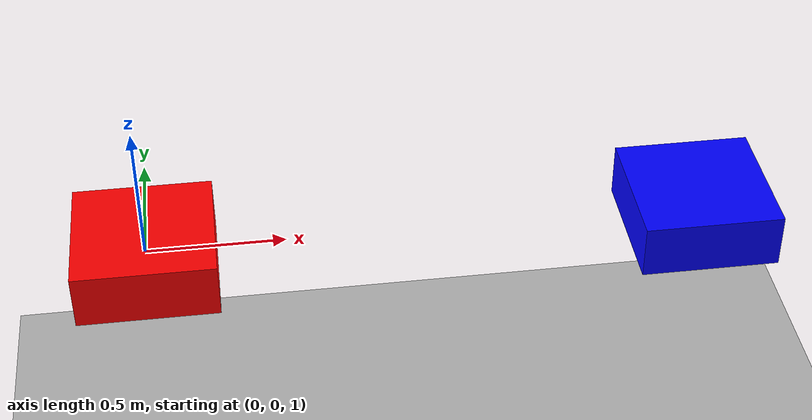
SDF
<?xml version="1.0" ?>
<sdf version="1.9">
  <world name="my_world">

    <!-- Directly Defined Ground Plane -->
    <model name="ground_plane">
      <static>true</static>
      <link name="link">
        <collision name="collision">
          <geometry>
            <plane>
              <normal>0 0 1</normal>
              <size>10 10</size>
            </plane>
          </geometry>
        </collision>
        <visual name="visual">
          <geometry>
            <plane>
              <normal>0 0 1</normal>
              <size>10 10</size>
            </plane>
          </geometry>
          <material>
            <ambient>0.7 0.7 0.7 1</ambient>
          </material>
        </visual>
      </link>
    </model>

    <!-- Drone 1 -->
    <model name="drone1">
      <pose>0 0 1 0 0 0</pose>
      <static>false</static>
      <link name="base_link">
        <collision name="collision">
          <geometry>
            <box>
              <size>0.5 0.5 0.2</size>
            </box>
          </geometry>
        </collision>
        <visual name="visual">
          <geometry>
            <box>
              <size>0.5 0.5 0.2</size>
            </box>
          </geometry>
          <material>
            <ambient>1 0 0 1</ambient> <!-- Red -->
          </material>
        </visual>
      </link>
    </model>

    <!-- Drone 2 -->
    <model name="drone2">
      <pose>2 0 1 0 0 0</pose>
      <static>false</static>
      <link name="base_link">
        <collision name="collision">
          <geometry>
            <box>
              <size>0.5 0.5 0.2</size>
            </box>
          </geometry>
        </collision>
        <visual name="visual">
          <geometry>
            <box>
              <size>0.5 0.5 0.2</size>
            </box>
          </geometry>
          <material>
            <ambient>0 0 1 1</ambient> <!-- Blue -->
          </material>
        </visual>
      </link>
    </model>

  </world>
</sdf>
